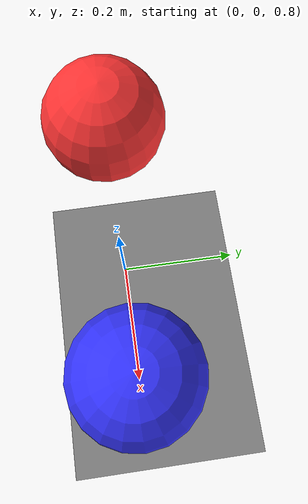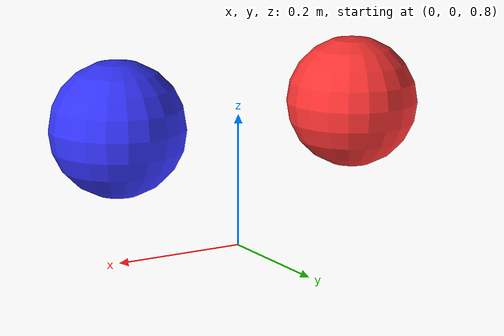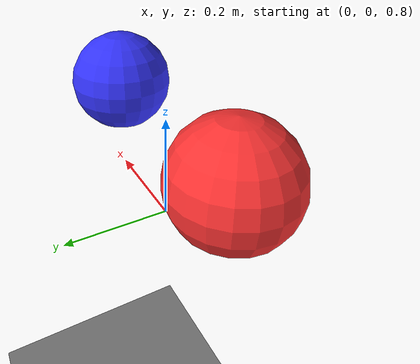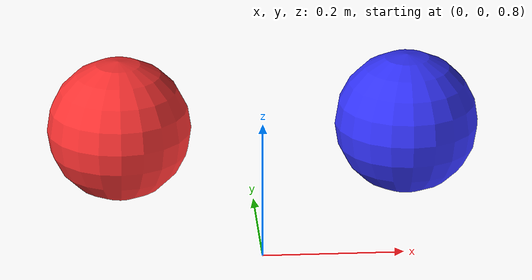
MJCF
<mujoco model="collision_filter">
  <option timestep="0.002"/>
  <worldbody>
    <geom name="floor" type="plane" size="2 2 .1" contype="1" conaffinity="3"/>
    <body name="red" pos="-.2 0 1"><freejoint/><geom name="red_geom" type="sphere" size=".1" mass="1" contype="2" conaffinity="1" rgba="1 .2 .2 1"/></body>
    <body name="blue" pos=".2 0 1"><freejoint/><geom name="blue_geom" type="sphere" size=".1" mass="1" contype="4" conaffinity="1" rgba=".2 .2 1 1"/></body>
  </worldbody>
  <contact><exclude body1="red" body2="blue"/></contact>
</mujoco>
